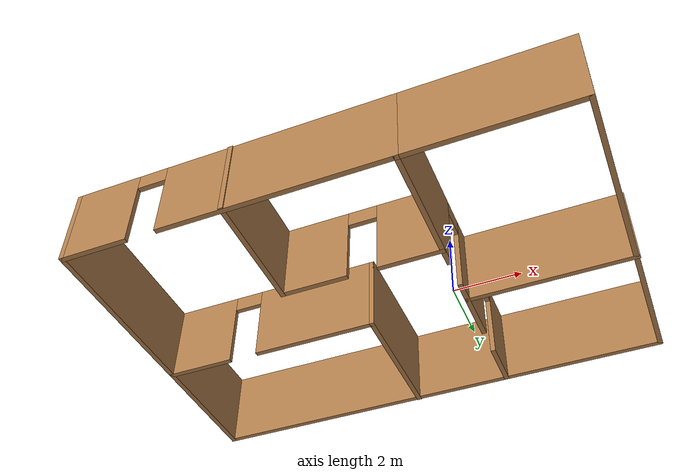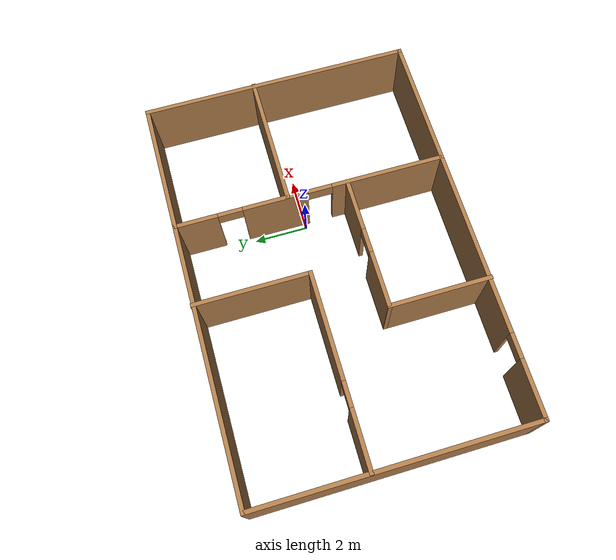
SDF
<?xml version='1.0'?>
<sdf version='1.6'>
  <model name='mybuilding'>
    <pose frame=''>-2.23015 -0.308468 0 0 -0 0</pose>
    <link name='Wall_10'>
      <pose frame=''>-3.92505 0.854 0 0 -0 0</pose>
      <visual name='Wall_10_Visual_0'>
        <pose frame=''>-2.42075 0 1.25 0 -0 0</pose>
        <geometry>
          <box>
            <size>2.1585 0.15 2.5</size>
          </box>
        </geometry>
        <material>
          <script>
            <uri>file://media/materials/scripts/gazebo.material</uri>
            <name>Gazebo/Wood</name>
          </script>
          <ambient>0.435294 0.796078 0.67451 1</ambient>
        </material>
      </visual>
      <collision name='Wall_10_Collision_0'>
        <geometry>
          <box>
            <size>2.1585 0.15 2.5</size>
          </box>
        </geometry>
        <pose frame=''>-2.42075 0 1.25 0 -0 0</pose>
      </collision>
      <visual name='Wall_10_Visual_1'>
        <pose frame=''>1.52925 0 1.25 0 -0 0</pose>
        <geometry>
          <box>
            <size>3.9415 0.15 2.5</size>
          </box>
        </geometry>
        <material>
          <script>
            <uri>file://media/materials/scripts/gazebo.material</uri>
            <name>Gazebo/Wood</name>
          </script>
          <ambient>0.435294 0.796078 0.67451 1</ambient>
        </material>
      </visual>
      <collision name='Wall_10_Collision_1'>
        <geometry>
          <box>
            <size>3.9415 0.15 2.5</size>
          </box>
        </geometry>
        <pose frame=''>1.52925 0 1.25 0 -0 0</pose>
      </collision>
      <visual name='Wall_10_Visual_2'>
        <pose frame=''>-0.891495 0 2.25 0 -0 0</pose>
        <geometry>
          <box>
            <size>0.9 0.15 0.5</size>
          </box>
        </geometry>
        <material>
          <script>
            <uri>file://media/materials/scripts/gazebo.material</uri>
            <name>Gazebo/Wood</name>
          </script>
          <ambient>0.435294 0.796078 0.67451 1</ambient>
        </material>
      </visual>
      <collision name='Wall_10_Collision_2'>
        <geometry>
          <box>
            <size>0.9 0.15 0.5</size>
          </box>
        </geometry>
        <pose frame=''>-0.891495 0 2.25 0 -0 0</pose>
      </collision>
    </link>
    <link name='Wall_11'>
      <collision name='Wall_11_Collision'>
        <geometry>
          <box>
            <size>4.25 0.15 2.5</size>
          </box>
        </geometry>
        <pose frame=''>0 0 1.25 0 -0 0</pose>
      </collision>
      <visual name='Wall_11_Visual'>
        <pose frame=''>0 0 1.25 0 -0 0</pose>
        <geometry>
          <box>
            <size>4.25 0.15 2.5</size>
          </box>
        </geometry>
        <material>
          <script>
            <uri>file://media/materials/scripts/gazebo.material</uri>
            <name>Gazebo/Wood</name>
          </script>
          <ambient>0.435294 0.796078 0.67451 1</ambient>
        </material>
      </visual>
      <pose frame=''>-0.500053 2.904 0 0 -0 1.5708</pose>
    </link>
    <link name='Wall_13'>
      <pose frame=''>0.042947 -1.354 0 0 -0 0</pose>
      <visual name='Wall_13_Visual_0'>
        <pose frame=''>-1.44475 0 1.25 0 -0 0</pose>
        <geometry>
          <box>
            <size>2.1105 0.15 2.5</size>
          </box>
        </geometry>
        <material>
          <script>
            <uri>file://media/materials/scripts/gazebo.material</uri>
            <name>Gazebo/Wood</name>
          </script>
          <ambient>0.435294 0.796078 0.67451 1</ambient>
        </material>
      </visual>
      <collision name='Wall_13_Collision_0'>
        <geometry>
          <box>
            <size>2.1105 0.15 2.5</size>
          </box>
        </geometry>
        <pose frame=''>-1.44475 0 1.25 0 -0 0</pose>
      </collision>
      <visual name='Wall_13_Visual_1'>
        <pose frame=''>1.50525 0 1.25 0 -0 0</pose>
        <geometry>
          <box>
            <size>1.9895 0.15 2.5</size>
          </box>
        </geometry>
        <material>
          <script>
            <uri>file://media/materials/scripts/gazebo.material</uri>
            <name>Gazebo/Wood</name>
          </script>
          <ambient>0.435294 0.796078 0.67451 1</ambient>
        </material>
      </visual>
      <collision name='Wall_13_Collision_1'>
        <geometry>
          <box>
            <size>1.9895 0.15 2.5</size>
          </box>
        </geometry>
        <pose frame=''>1.50525 0 1.25 0 -0 0</pose>
      </collision>
      <visual name='Wall_13_Visual_2'>
        <pose frame=''>0.060505 0 2.25 0 -0 0</pose>
        <geometry>
          <box>
            <size>0.9 0.15 0.5</size>
          </box>
        </geometry>
        <material>
          <script>
            <uri>file://media/materials/scripts/gazebo.material</uri>
            <name>Gazebo/Wood</name>
          </script>
          <ambient>0.435294 0.796078 0.67451 1</ambient>
        </material>
      </visual>
      <collision name='Wall_13_Collision_2'>
        <geometry>
          <box>
            <size>0.9 0.15 0.5</size>
          </box>
        </geometry>
        <pose frame=''>0.060505 0 2.25 0 -0 0</pose>
      </collision>
    </link>
    <link name='Wall_15'>
      <collision name='Wall_15_Collision'>
        <geometry>
          <box>
            <size>3.75 0.15 2.5</size>
          </box>
        </geometry>
        <pose frame=''>0 0 1.25 0 -0 0</pose>
      </collision>
      <visual name='Wall_15_Visual'>
        <pose frame=''>0 0 1.25 0 -0 0</pose>
        <geometry>
          <box>
            <size>3.75 0.15 2.5</size>
          </box>
        </geometry>
        <material>
          <script>
            <uri>file://media/materials/scripts/gazebo.material</uri>
            <name>Gazebo/Wood</name>
          </script>
          <ambient>0.435294 0.796078 0.67451 1</ambient>
        </material>
      </visual>
      <pose frame=''>-2.38205 -3.154 0 0 0 -1.5708</pose>
    </link>
    <link name='Wall_17'>
      <collision name='Wall_17_Collision'>
        <geometry>
          <box>
            <size>5 0.15 2.5</size>
          </box>
        </geometry>
        <pose frame=''>0 0 1.25 0 -0 0</pose>
      </collision>
      <visual name='Wall_17_Visual'>
        <pose frame=''>0 0 1.25 0 -0 0</pose>
        <geometry>
          <box>
            <size>5 0.15 2.5</size>
          </box>
        </geometry>
        <material>
          <script>
            <uri>file://media/materials/scripts/gazebo.material</uri>
            <name>Gazebo/Wood</name>
          </script>
          <ambient>1 1 1 1</ambient>
        </material>
      </visual>
      <pose frame=''>4.90805 -4.921 0 0 -0 0</pose>
    </link>
    <link name='Wall_18'>
      <collision name='Wall_18_Collision'>
        <geometry>
          <box>
            <size>10 0.15 2.5</size>
          </box>
        </geometry>
        <pose frame=''>0 0 1.25 0 -0 0</pose>
      </collision>
      <visual name='Wall_18_Visual'>
        <pose frame=''>0 0 1.25 0 -0 0</pose>
        <geometry>
          <box>
            <size>10 0.15 2.5</size>
          </box>
        </geometry>
        <material>
          <script>
            <uri>file://media/materials/scripts/gazebo.material</uri>
            <name>Gazebo/Wood</name>
          </script>
          <ambient>1 1 1 1</ambient>
        </material>
      </visual>
      <pose frame=''>7.33305 0.004003 0 0 -0 1.5708</pose>
    </link>
    <link name='Wall_19'>
      <collision name='Wall_19_Collision'>
        <geometry>
          <box>
            <size>5 0.15 2.5</size>
          </box>
        </geometry>
        <pose frame=''>0 0 1.25 0 -0 0</pose>
      </collision>
      <visual name='Wall_19_Visual'>
        <pose frame=''>0 0 1.25 0 -0 0</pose>
        <geometry>
          <box>
            <size>5 0.15 2.5</size>
          </box>
        </geometry>
        <material>
          <script>
            <uri>file://media/materials/scripts/gazebo.material</uri>
            <name>Gazebo/Wood</name>
          </script>
          <ambient>0.435294 0.796078 0.67451 1</ambient>
        </material>
      </visual>
      <pose frame=''>4.90805 4.929 0 0 -0 3.14159</pose>
    </link>
    <link name='Wall_21'>
      <collision name='Wall_21_Collision'>
        <geometry>
          <box>
            <size>5 0.15 2.5</size>
          </box>
        </geometry>
        <pose frame=''>0 0 1.25 0 -0 0</pose>
      </collision>
      <visual name='Wall_21_Visual'>
        <pose frame=''>0 0 1.25 0 -0 0</pose>
        <geometry>
          <box>
            <size>5 0.15 2.5</size>
          </box>
        </geometry>
        <material>
          <script>
            <uri>file://media/materials/scripts/gazebo.material</uri>
            <name>Gazebo/Wood</name>
          </script>
          <ambient>0.435294 0.796078 0.67451 1</ambient>
        </material>
      </visual>
      <pose frame=''>4.94195 0.854 0 0 -0 0</pose>
    </link>
    <link name='Wall_5'>
      <collision name='Wall_5_Collision'>
        <geometry>
          <box>
            <size>10 0.15 2.5</size>
          </box>
        </geometry>
        <pose frame=''>0 0 1.25 0 -0 0</pose>
      </collision>
      <visual name='Wall_5_Visual'>
        <pose frame=''>0 0 1.25 0 -0 0</pose>
        <geometry>
          <box>
            <size>10 0.15 2.5</size>
          </box>
        </geometry>
        <material>
          <script>
            <uri>file://media/materials/scripts/gazebo.material</uri>
            <name>Gazebo/Wood</name>
          </script>
          <ambient>1 1 1 1</ambient>
        </material>
      </visual>
      <pose frame=''>-7.36695 0.004003 0 0 -0 1.5708</pose>
    </link>
    <link name='Wall_6'>
      <collision name='Wall_6_Collision'>
        <geometry>
          <box>
            <size>10 0.15 2.5</size>
          </box>
        </geometry>
        <pose frame=''>0 0 1.25 0 -0 0</pose>
      </collision>
      <visual name='Wall_6_Visual'>
        <pose frame=''>0 0 1.25 0 -0 0</pose>
        <geometry>
          <box>
            <size>10 0.15 2.5</size>
          </box>
        </geometry>
        <material>
          <script>
            <uri>file://media/materials/scripts/gazebo.material</uri>
            <name>Gazebo/Wood</name>
          </script>
          <ambient>1 1 1 1</ambient>
        </material>
      </visual>
      <pose frame=''>-2.44195 4.929 0 0 -0 0</pose>
    </link>
    <link name='Wall_7'>
      <pose frame=''>2.48305 0.004003 0 0 0 -1.5708</pose>
      <visual name='Wall_7_Visual_0'>
        <pose frame=''>-4.19877 0 1.25 0 -0 0</pose>
        <geometry>
          <box>
            <size>1.60246 0.15 2.5</size>
          </box>
        </geometry>
        <material>
          <script>
            <uri>file://media/materials/scripts/gazebo.material</uri>
            <name>Gazebo/Wood</name>
          </script>
          <ambient>0.435294 0.796078 0.67451 1</ambient>
        </material>
      </visual>
      <collision name='Wall_7_Collision_0'>
        <geometry>
          <box>
            <size>1.60246 0.15 2.5</size>
          </box>
        </geometry>
        <pose frame=''>-4.19877 0 1.25 0 -0 0</pose>
      </collision>
      <visual name='Wall_7_Visual_1'>
        <pose frame=''>-1.30754 0 1.25 0 -0 0</pose>
        <geometry>
          <box>
            <size>2.38 0.15 2.5</size>
          </box>
        </geometry>
        <material>
          <script>
            <uri>file://media/materials/scripts/gazebo.material</uri>
            <name>Gazebo/Wood</name>
          </script>
          <ambient>0.435294 0.796078 0.67451 1</ambient>
        </material>
      </visual>
      <collision name='Wall_7_Collision_1'>
        <geometry>
          <box>
            <size>2.38 0.15 2.5</size>
          </box>
        </geometry>
        <pose frame=''>-1.30754 0 1.25 0 -0 0</pose>
      </collision>
      <visual name='Wall_7_Visual_2'>
        <pose frame=''>2.89123 0 1.25 0 -0 0</pose>
        <geometry>
          <box>
            <size>4.21754 0.15 2.5</size>
          </box>
        </geometry>
        <material>
          <script>
            <uri>file://media/materials/scripts/gazebo.material</uri>
            <name>Gazebo/Wood</name>
          </script>
          <ambient>0.435294 0.796078 0.67451 1</ambient>
        </material>
      </visual>
      <collision name='Wall_7_Collision_2'>
        <geometry>
          <box>
            <size>4.21754 0.15 2.5</size>
          </box>
        </geometry>
        <pose frame=''>2.89123 0 1.25 0 -0 0</pose>
      </collision>
      <visual name='Wall_7_Visual_3'>
        <pose frame=''>-2.94754 0 2.25 0 -0 0</pose>
        <geometry>
          <box>
            <size>0.9 0.15 0.5</size>
          </box>
        </geometry>
        <material>
          <script>
            <uri>file://media/materials/scripts/gazebo.material</uri>
            <name>Gazebo/Wood</name>
          </script>
          <ambient>0.435294 0.796078 0.67451 1</ambient>
        </material>
      </visual>
      <collision name='Wall_7_Collision_3'>
        <geometry>
          <box>
            <size>0.9 0.15 0.5</size>
          </box>
        </geometry>
        <pose frame=''>-2.94754 0 2.25 0 -0 0</pose>
      </collision>
      <visual name='Wall_7_Visual_4'>
        <pose frame=''>0.332463 0 2.25 0 -0 0</pose>
        <geometry>
          <box>
            <size>0.9 0.15 0.5</size>
          </box>
        </geometry>
        <material>
          <script>
            <uri>file://media/materials/scripts/gazebo.material</uri>
            <name>Gazebo/Wood</name>
          </script>
          <ambient>0.435294 0.796078 0.67451 1</ambient>
        </material>
      </visual>
      <collision name='Wall_7_Collision_4'>
        <geometry>
          <box>
            <size>0.9 0.15 0.5</size>
          </box>
        </geometry>
        <pose frame=''>0.332463 0 2.25 0 -0 0</pose>
      </collision>
    </link>
    <link name='Wall_8'>
      <pose frame=''>-2.44195 -4.921 0 0 -0 3.14159</pose>
      <visual name='Wall_8_Visual_0'>
        <pose frame=''>-1.5177 0 1.25 0 -0 0</pose>
        <geometry>
          <box>
            <size>6.9646 0.15 2.5</size>
          </box>
        </geometry>
        <material>
          <script>
            <uri>file://media/materials/scripts/gazebo.material</uri>
            <name>Gazebo/Wood</name>
          </script>
          <ambient>1 1 1 1</ambient>
        </material>
      </visual>
      <collision name='Wall_8_Collision_0'>
        <geometry>
          <box>
            <size>6.9646 0.15 2.5</size>
          </box>
        </geometry>
        <pose frame=''>-1.5177 0 1.25 0 -0 0</pose>
      </collision>
      <visual name='Wall_8_Visual_1'>
        <pose frame=''>3.9323 0 1.25 0 -0 0</pose>
        <geometry>
          <box>
            <size>2.1354 0.15 2.5</size>
          </box>
        </geometry>
        <material>
          <script>
            <uri>file://media/materials/scripts/gazebo.material</uri>
            <name>Gazebo/Wood</name>
          </script>
          <ambient>1 1 1 1</ambient>
        </material>
      </visual>
      <collision name='Wall_8_Collision_1'>
        <geometry>
          <box>
            <size>2.1354 0.15 2.5</size>
          </box>
        </geometry>
        <pose frame=''>3.9323 0 1.25 0 -0 0</pose>
      </collision>
      <visual name='Wall_8_Visual_2'>
        <pose frame=''>2.4146 0 2.25 0 -0 0</pose>
        <geometry>
          <box>
            <size>0.9 0.15 0.5</size>
          </box>
        </geometry>
        <material>
          <script>
            <uri>file://media/materials/scripts/gazebo.material</uri>
            <name>Gazebo/Wood</name>
          </script>
          <ambient>1 1 1 1</ambient>
        </material>
      </visual>
      <collision name='Wall_8_Collision_2'>
        <geometry>
          <box>
            <size>0.9 0.15 0.5</size>
          </box>
        </geometry>
        <pose frame=''>2.4146 0 2.25 0 -0 0</pose>
      </collision>
    </link>
    <static>1</static>
  </model>
</sdf>
